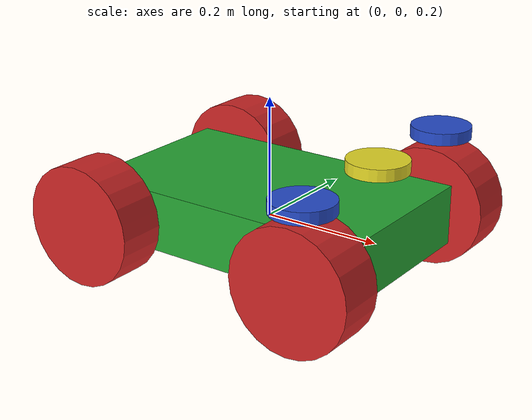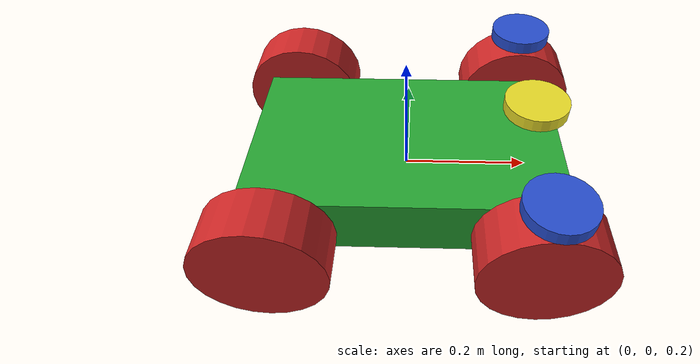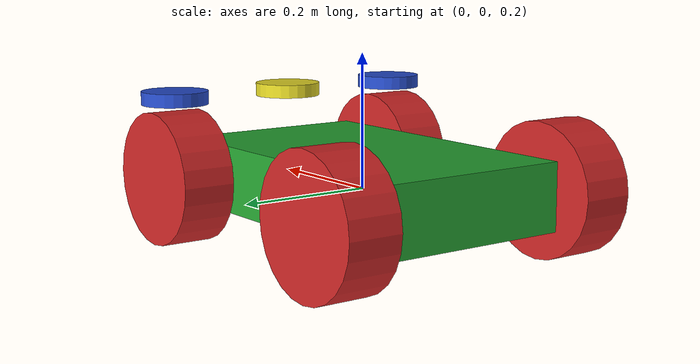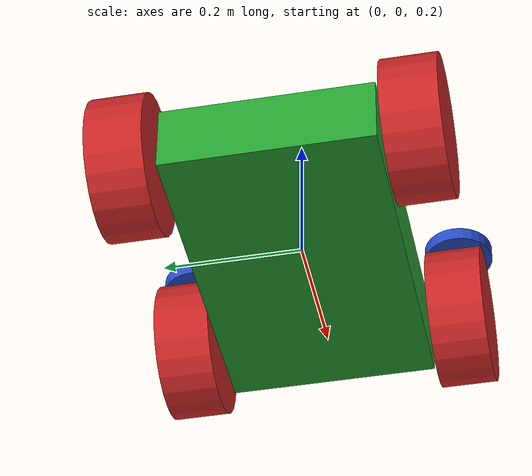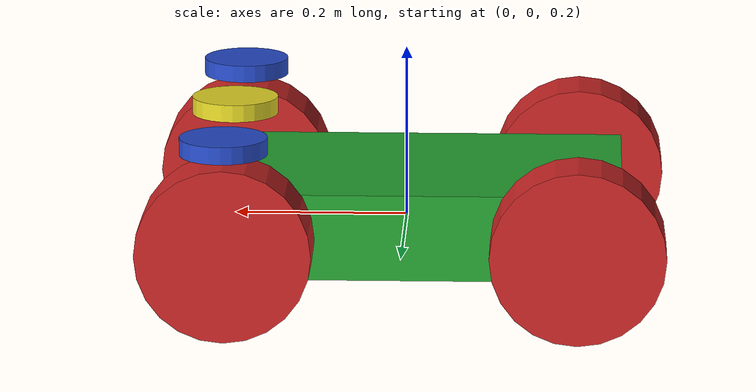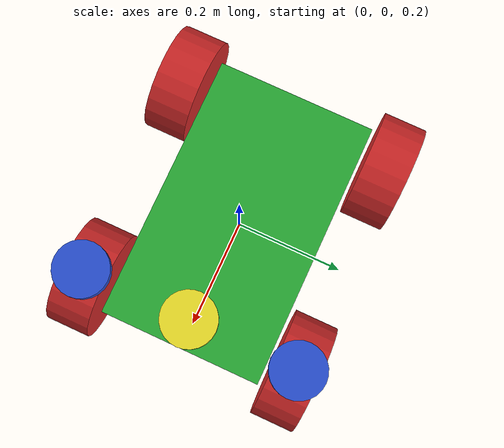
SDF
<?xml version='1.0'?>
<sdf version='1.6'>
<model name='steer_bot_ardupilot'>
    <pose>0 0 0.21 0 0 0</pose>

    <include>
        <pose>0 0 0 0 0 0</pose>
        <uri>model://steer_bot</uri>
    </include>

    <plugin name="ardupilot_plugin" filename="libArduPilotPlugin.so">
        <!-- Port settings -->
        <fdm_addr>127.0.0.1</fdm_addr>
        <fdm_port_in>9002</fdm_port_in>
        <connectionTimeoutMaxCount>5</connectionTimeoutMaxCount>
        <modelXYZToAirplaneXForwardZDown>0 0 0 3.141593 0 0</modelXYZToAirplaneXForwardZDown>
        <gazeboXYZToNED>0 0 0 3.141593 0 0</gazeboXYZToNED>

        <!-- Sensors -->
        <imuName>steer_bot_ardupilot::imu_link::imu_sensor</imuName>

        <!-- Control / channels -->

        <!--
            SERVO1_FUNCTION 94 (Script 1)
        -->
        <control channel="0">
            <jointName>steer_bot_ardupilot::steer_bot::rear_left_wheel_joint</jointName>
            <useForce>1</useForce>
            <multiplier>100.0</multiplier>
            <offset>-0.5</offset>
            <servo_min>1000</servo_min>
            <servo_max>2000</servo_max>
            <type>VELOCITY</type>
            <p_gain>1</p_gain>
            <i_gain>0</i_gain>
            <d_gain>0</d_gain>
            <i_max>1</i_max>
            <i_min>0</i_min>
            <cmd_max>50.0</cmd_max>
            <cmd_min>-50.0</cmd_min>
        </control>

        <!--
            SERVO2_FUNCTION 95 (Script 2)
        -->
        <control channel="1">
            <jointName>steer_bot_ardupilot::steer_bot::rear_right_wheel_joint</jointName>
            <useForce>1</useForce>
            <multiplier>100.0</multiplier>
            <offset>-0.5</offset>
            <servo_min>1000</servo_min>
            <servo_max>2000</servo_max>
            <type>VELOCITY</type>
            <p_gain>1</p_gain>
            <i_gain>0</i_gain>
            <d_gain>0</d_gain>
            <i_max>1</i_max>
            <i_min>0</i_min>
            <cmd_max>50.0</cmd_max>
            <cmd_min>-50.0</cmd_min>
        </control>

        <!--
            SERVO3_FUNCTION 96 (Script 3)
        -->
        <control channel="2">
            <jointName>steer_bot_ardupilot::steer_bot::front_left_steer_joint</jointName>
            <useForce>1</useForce>
            <multiplier>1.570796327</multiplier>
            <offset>-0.5</offset>
            <servo_min>1000</servo_min>
            <servo_max>2000</servo_max>
            <type>POSITION</type>
            <p_gain>2.0</p_gain>
            <i_gain>0</i_gain>
            <d_gain>0.1</d_gain>
            <i_max>1</i_max>
            <i_min>0</i_min>
            <cmd_max>0.785398163</cmd_max>
            <cmd_min>-0.785398163</cmd_min>
        </control>

        <!--
            SERVO4_FUNCTION 97 (Script 4)
        -->
        <control channel="3">
            <jointName>steer_bot_ardupilot::steer_bot::front_right_steer_joint</jointName>
            <useForce>1</useForce>
            <multiplier>1.570796327</multiplier>
            <offset>-0.5</offset>
            <servo_min>1000</servo_min>
            <servo_max>2000</servo_max>
            <type>POSITION</type>
            <p_gain>2.0</p_gain>
            <i_gain>0</i_gain>
            <d_gain>0.1</d_gain>
            <i_max>1</i_max>
            <i_min>0</i_min>
            <cmd_max>0.785398163</cmd_max>
            <cmd_min>-0.785398163</cmd_min>
        </control>

    </plugin>

    <link name='imu_link'>
        <inertial>
            <mass>0.01</mass>
            <inertia>
                <ixx>1.66667E-07</ixx>
                <ixy>0</ixy>
                <ixz>0</ixz>
                <iyy>1.66667E-07</iyy>
                <iyz>0</iyz>
                <izz>1.66667E-07</izz>
            </inertia>
        </inertial>
        <sensor name="imu_sensor" type="imu">
            <pose>0 0 0 3.141593 0 0</pose>
            <always_on>1</always_on>
            <update_rate>1000.0</update_rate>
        </sensor>
    </link>

    <joint name='imu_joint' type='fixed'>
        <child>imu_link</child>
        <parent>steer_bot_ardupilot::steer_bot::base_link</parent>
    </joint>
</model>
</sdf>

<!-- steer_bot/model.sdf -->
<sdf version='1.7'>
  <model name='steer_bot'>
    <link name='base_link'>
      <inertial>
        <pose>0 0 0 0 -0 0</pose>
        <mass>5</mass>
        <inertia>
          <ixx>0.0416667</ixx>
          <ixy>0</ixy>
          <ixz>0</ixz>
          <iyy>0.108333</iyy>
          <iyz>0</iyz>
          <izz>0.141667</izz>
        </inertia>
      </inertial>
      <collision name='base_link_collision'>
        <pose>0 0 0 0 -0 0</pose>
        <geometry>
          <box>
            <size>0.5 0.3 0.1</size>
          </box>
        </geometry>
        <surface>
          <contact>
            <ode/>
          </contact>
          <friction>
            <ode/>
          </friction>
        </surface>
      </collision>
      <visual name='base_link_visual'>
        <pose>0 0 0 0 -0 0</pose>
        <geometry>
          <box>
            <size>0.5 0.3 0.1</size>
          </box>
        </geometry>
        <material>
          <script>
            <name>Gazebo/Green</name>
            <uri>file://media/materials/scripts/gazebo.material</uri>
          </script>
        </material>
      </visual>
      <gravity>1</gravity>
      <velocity_decay/>
    </link>
    <joint name='front_left_steer_joint' type='revolute'>
      <pose relative_to='base_link'>0.2 0.2 0.12 0 -0 0</pose>
      <parent>base_link</parent>
      <child>front_left_steer_link</child>
      <axis>
        <xyz>0 0 1</xyz>
        <limit>
          <lower>-3.14159</lower>
          <upper>3.14159</upper>
          <effort>10</effort>
          <velocity>5</velocity>
        </limit>
        <dynamics>
          <spring_reference>0</spring_reference>
          <spring_stiffness>0</spring_stiffness>
        </dynamics>
      </axis>
    </joint>
    <link name='front_left_steer_link'>
      <pose relative_to='front_left_steer_joint'>0 0 0 0 -0 0</pose>
      <inertial>
        <pose>0 0 0 0 -0 0</pose>
        <mass>1</mass>
        <inertia>
          <ixx>0.000658333</ixx>
          <ixy>0</ixy>
          <ixz>0</ixz>
          <iyy>0.000658333</iyy>
          <iyz>0</iyz>
          <izz>0.00125</izz>
        </inertia>
      </inertial>
      <collision name='front_left_steer_link_collision'>
        <pose>0 0 0 0 -0 0</pose>
        <geometry>
          <cylinder>
            <length>0.02</length>
            <radius>0.05</radius>
          </cylinder>
        </geometry>
        <surface>
          <contact>
            <ode/>
          </contact>
          <friction>
            <ode/>
          </friction>
        </surface>
      </collision>
      <visual name='front_left_steer_link_visual'>
        <pose>0 0 0 0 -0 0</pose>
        <geometry>
          <cylinder>
            <length>0.02</length>
            <radius>0.05</radius>
          </cylinder>
        </geometry>
        <material>
          <script>
            <name>Gazebo/Blue</name>
            <uri>file://media/materials/scripts/gazebo.material</uri>
          </script>
        </material>
      </visual>
      <gravity>1</gravity>
      <velocity_decay/>
    </link>
    <joint name='front_left_wheel_joint' type='revolute'>
      <pose relative_to='front_left_steer_link'>0 0 -0.12 -1.5708 0 0</pose>
      <parent>front_left_steer_link</parent>
      <child>front_left_wheel_link</child>
      <axis>
        <xyz>0 0 1</xyz>
        <limit>
          <lower>-1e+16</lower>
          <upper>1e+16</upper>
        </limit>
        <dynamics>
          <spring_reference>0</spring_reference>
          <spring_stiffness>0</spring_stiffness>
        </dynamics>
      </axis>
    </joint>
    <link name='front_left_wheel_link'>
      <pose relative_to='front_left_wheel_joint'>0 0 0 0 -0 0</pose>
      <inertial>
        <pose>0 0 0 0 -0 0</pose>
        <mass>1</mass>
        <inertia>
          <ixx>0.00303333</ixx>
          <ixy>0</ixy>
          <ixz>0</ixz>
          <iyy>0.00303333</iyy>
          <iyz>0</iyz>
          <izz>0.005</izz>
        </inertia>
      </inertial>
      <collision name='front_left_wheel_link_collision'>
        <pose>0 0 0 0 -0 0</pose>
        <geometry>
          <cylinder>
            <length>0.08</length>
            <radius>0.1</radius>
          </cylinder>
        </geometry>
        <surface>
          <contact>
            <ode/>
          </contact>
          <friction>
            <ode/>
          </friction>
        </surface>
      </collision>
      <visual name='front_left_wheel_link_visual'>
        <pose>0 0 0 0 -0 0</pose>
        <geometry>
          <cylinder>
            <length>0.08</length>
            <radius>0.1</radius>
          </cylinder>
        </geometry>
        <material>
          <script>
            <name>Gazebo/Red</name>
            <uri>file://media/materials/scripts/gazebo.material</uri>
          </script>
        </material>
      </visual>
      <gravity>1</gravity>
      <velocity_decay/>
    </link>
    <joint name='front_right_steer_joint' type='revolute'>
      <pose relative_to='base_link'>0.2 -0.2 0.12 0 -0 0</pose>
      <parent>base_link</parent>
      <child>front_right_steer_link</child>
      <axis>
        <xyz>0 0 1</xyz>
        <limit>
          <lower>-3.14159</lower>
          <upper>3.14159</upper>
          <effort>10</effort>
          <velocity>5</velocity>
        </limit>
        <dynamics>
          <spring_reference>0</spring_reference>
          <spring_stiffness>0</spring_stiffness>
        </dynamics>
      </axis>
    </joint>
    <link name='front_right_steer_link'>
      <pose relative_to='front_right_steer_joint'>0 0 0 0 -0 0</pose>
      <inertial>
        <pose>0 0 0 0 -0 0</pose>
        <mass>1</mass>
        <inertia>
          <ixx>0.000658333</ixx>
          <ixy>0</ixy>
          <ixz>0</ixz>
          <iyy>0.000658333</iyy>
          <iyz>0</iyz>
          <izz>0.00125</izz>
        </inertia>
      </inertial>
      <collision name='front_right_steer_link_collision'>
        <pose>0 0 0 0 -0 0</pose>
        <geometry>
          <cylinder>
            <length>0.02</length>
            <radius>0.05</radius>
          </cylinder>
        </geometry>
        <surface>
          <contact>
            <ode/>
          </contact>
          <friction>
            <ode/>
          </friction>
        </surface>
      </collision>
      <visual name='front_right_steer_link_visual'>
        <pose>0 0 0 0 -0 0</pose>
        <geometry>
          <cylinder>
            <length>0.02</length>
            <radius>0.05</radius>
          </cylinder>
        </geometry>
        <material>
          <script>
            <name>Gazebo/Blue</name>
            <uri>file://media/materials/scripts/gazebo.material</uri>
          </script>
        </material>
      </visual>
      <gravity>1</gravity>
      <velocity_decay/>
    </link>
    <joint name='front_right_wheel_joint' type='revolute'>
      <pose relative_to='front_right_steer_link'>0 0 -0.12 -1.5708 0 0</pose>
      <parent>front_right_steer_link</parent>
      <child>front_right_wheel_link</child>
      <axis>
        <xyz>0 0 1</xyz>
        <limit>
          <lower>-1e+16</lower>
          <upper>1e+16</upper>
        </limit>
        <dynamics>
          <spring_reference>0</spring_reference>
          <spring_stiffness>0</spring_stiffness>
        </dynamics>
      </axis>
    </joint>
    <link name='front_right_wheel_link'>
      <pose relative_to='front_right_wheel_joint'>0 0 0 0 -0 0</pose>
      <inertial>
        <pose>0 0 0 0 -0 0</pose>
        <mass>1</mass>
        <inertia>
          <ixx>0.00303333</ixx>
          <ixy>0</ixy>
          <ixz>0</ixz>
          <iyy>0.00303333</iyy>
          <iyz>0</iyz>
          <izz>0.005</izz>
        </inertia>
      </inertial>
      <collision name='front_right_wheel_link_collision'>
        <pose>0 0 0 0 -0 0</pose>
        <geometry>
          <cylinder>
            <length>0.08</length>
            <radius>0.1</radius>
          </cylinder>
        </geometry>
        <surface>
          <contact>
            <ode/>
          </contact>
          <friction>
            <ode/>
          </friction>
        </surface>
      </collision>
      <visual name='front_right_wheel_link_visual'>
        <pose>0 0 0 0 -0 0</pose>
        <geometry>
          <cylinder>
            <length>0.08</length>
            <radius>0.1</radius>
          </cylinder>
        </geometry>
        <material>
          <script>
            <name>Gazebo/Red</name>
            <uri>file://media/materials/scripts/gazebo.material</uri>
          </script>
        </material>
      </visual>
      <gravity>1</gravity>
      <velocity_decay/>
    </link>
    <joint name='front_steer_joint' type='revolute'>
      <pose relative_to='base_link'>0.2 0 0.12 0 -0 0</pose>
      <parent>base_link</parent>
      <child>front_steer_link</child>
      <axis>
        <xyz>0 0 1</xyz>
        <limit>
          <lower>-3.14159</lower>
          <upper>3.14159</upper>
          <effort>10</effort>
          <velocity>5</velocity>
        </limit>
        <dynamics>
          <spring_reference>0</spring_reference>
          <spring_stiffness>0</spring_stiffness>
        </dynamics>
      </axis>
    </joint>
    <link name='front_steer_link'>
      <pose relative_to='front_steer_joint'>0 0 0 0 -0 0</pose>
      <inertial>
        <pose>0 0 0 0 -0 0</pose>
        <mass>1</mass>
        <inertia>
          <ixx>0.000658333</ixx>
          <ixy>0</ixy>
          <ixz>0</ixz>
          <iyy>0.000658333</iyy>
          <iyz>0</iyz>
          <izz>0.00125</izz>
        </inertia>
      </inertial>
      <collision name='front_steer_link_collision'>
        <pose>0 0 0 0 -0 0</pose>
        <geometry>
          <cylinder>
            <length>0.02</length>
            <radius>0.05</radius>
          </cylinder>
        </geometry>
        <surface>
          <contact>
            <ode/>
          </contact>
          <friction>
            <ode/>
          </friction>
        </surface>
      </collision>
      <visual name='front_steer_link_visual'>
        <pose>0 0 0 0 -0 0</pose>
        <geometry>
          <cylinder>
            <length>0.02</length>
            <radius>0.05</radius>
          </cylinder>
        </geometry>
        <material>
          <script>
            <name>Gazebo/Yellow</name>
            <uri>file://media/materials/scripts/gazebo.material</uri>
          </script>
        </material>
      </visual>
      <gravity>1</gravity>
      <velocity_decay/>
    </link>
    <joint name='rear_left_wheel_joint' type='revolute'>
      <pose relative_to='base_link'>-0.2 0.2 0 -1.5708 0 0</pose>
      <parent>base_link</parent>
      <child>rear_left_wheel_link</child>
      <axis>
        <xyz>0 0 1</xyz>
        <limit>
          <lower>-1e+16</lower>
          <upper>1e+16</upper>
        </limit>
        <dynamics>
          <spring_reference>0</spring_reference>
          <spring_stiffness>0</spring_stiffness>
        </dynamics>
      </axis>
    </joint>
    <link name='rear_left_wheel_link'>
      <pose relative_to='rear_left_wheel_joint'>0 0 0 0 -0 0</pose>
      <inertial>
        <pose>0 0 0 0 -0 0</pose>
        <mass>1</mass>
        <inertia>
          <ixx>0.00303333</ixx>
          <ixy>0</ixy>
          <ixz>0</ixz>
          <iyy>0.00303333</iyy>
          <iyz>0</iyz>
          <izz>0.005</izz>
        </inertia>
      </inertial>
      <collision name='rear_left_wheel_link_collision'>
        <pose>0 0 0 0 -0 0</pose>
        <geometry>
          <cylinder>
            <length>0.08</length>
            <radius>0.1</radius>
          </cylinder>
        </geometry>
        <surface>
          <contact>
            <ode/>
          </contact>
          <friction>
            <ode/>
          </friction>
        </surface>
      </collision>
      <visual name='rear_left_wheel_link_visual'>
        <pose>0 0 0 0 -0 0</pose>
        <geometry>
          <cylinder>
            <length>0.08</length>
            <radius>0.1</radius>
          </cylinder>
        </geometry>
        <material>
          <script>
            <name>Gazebo/Red</name>
            <uri>file://media/materials/scripts/gazebo.material</uri>
          </script>
        </material>
      </visual>
      <gravity>1</gravity>
      <velocity_decay/>
    </link>
    <joint name='rear_right_wheel_joint' type='revolute'>
      <pose relative_to='base_link'>-0.2 -0.2 0 -1.5708 0 0</pose>
      <parent>base_link</parent>
      <child>rear_right_wheel_link</child>
      <axis>
        <xyz>0 0 1</xyz>
        <limit>
          <lower>-1e+16</lower>
          <upper>1e+16</upper>
        </limit>
        <dynamics>
          <spring_reference>0</spring_reference>
          <spring_stiffness>0</spring_stiffness>
        </dynamics>
      </axis>
    </joint>
    <link name='rear_right_wheel_link'>
      <pose relative_to='rear_right_wheel_joint'>0 0 0 0 -0 0</pose>
      <inertial>
        <pose>0 0 0 0 -0 0</pose>
        <mass>1</mass>
        <inertia>
          <ixx>0.00303333</ixx>
          <ixy>0</ixy>
          <ixz>0</ixz>
          <iyy>0.00303333</iyy>
          <iyz>0</iyz>
          <izz>0.005</izz>
        </inertia>
      </inertial>
      <collision name='rear_right_wheel_link_collision'>
        <pose>0 0 0 0 -0 0</pose>
        <geometry>
          <cylinder>
            <length>0.08</length>
            <radius>0.1</radius>
          </cylinder>
        </geometry>
        <surface>
          <contact>
            <ode/>
          </contact>
          <friction>
            <ode/>
          </friction>
        </surface>
      </collision>
      <visual name='rear_right_wheel_link_visual'>
        <pose>0 0 0 0 -0 0</pose>
        <geometry>
          <cylinder>
            <length>0.08</length>
            <radius>0.1</radius>
          </cylinder>
        </geometry>
        <material>
          <script>
            <name>Gazebo/Red</name>
            <uri>file://media/materials/scripts/gazebo.material</uri>
          </script>
        </material>
      </visual>
      <gravity>1</gravity>
      <velocity_decay/>
    </link>
    <joint name='rear_wheel_joint' type='revolute'>
      <pose relative_to='base_link'>-0.2 0 0 -1.5708 0 0</pose>
      <parent>base_link</parent>
      <child>rear_wheel_link</child>
      <axis>
        <xyz>0 0 1</xyz>
        <limit>
          <lower>-1e+16</lower>
          <upper>1e+16</upper>
        </limit>
        <dynamics>
          <spring_reference>0</spring_reference>
          <spring_stiffness>0</spring_stiffness>
        </dynamics>
      </axis>
    </joint>
    <link name='rear_wheel_link'>
      <pose relative_to='rear_wheel_joint'>0 0 0 0 -0 0</pose>
      <inertial>
        <pose>0 0 0 0 -0 0</pose>
        <mass>0.03125</mass>
        <inertia>
          <ixx>9.04948e-06</ixx>
          <ixy>0</ixy>
          <ixz>0</ixz>
          <iyy>9.04948e-06</iyy>
          <iyz>0</iyz>
          <izz>9.76563e-06</izz>
        </inertia>
      </inertial>
      <collision name='rear_wheel_link_collision'>
        <pose>0 0 0 0 -0 0</pose>
        <geometry>
          <cylinder>
            <length>0.04</length>
            <radius>0.025</radius>
          </cylinder>
        </geometry>
        <surface>
          <contact>
            <ode/>
          </contact>
          <friction>
            <ode/>
          </friction>
        </surface>
      </collision>
      <visual name='rear_wheel_link_visual'>
        <pose>0 0 0 0 -0 0</pose>
        <geometry>
          <cylinder>
            <length>0.04</length>
            <radius>0.025</radius>
          </cylinder>
        </geometry>
        <material>
          <script>
            <name>Gazebo/Yellow</name>
            <uri>file://media/materials/scripts/gazebo.material</uri>
          </script>
        </material>
      </visual>
      <gravity>1</gravity>
      <velocity_decay/>
    </link>
    <static>0</static>
  </model>
</sdf>
